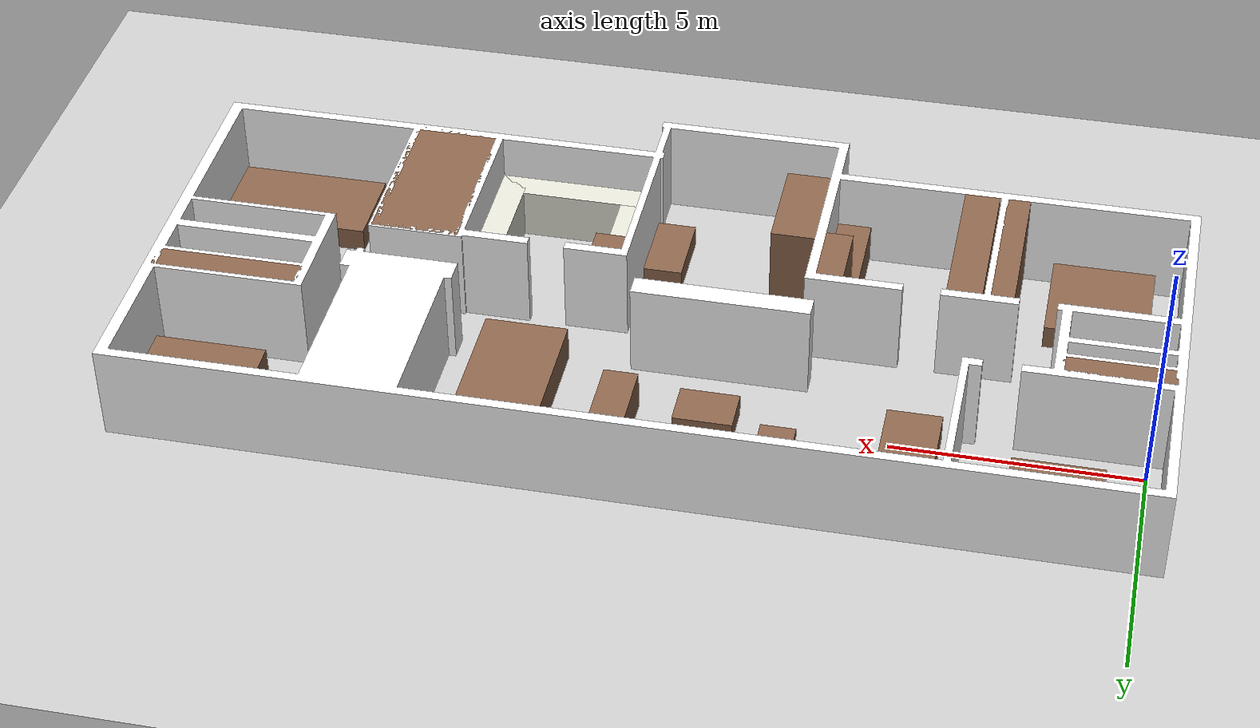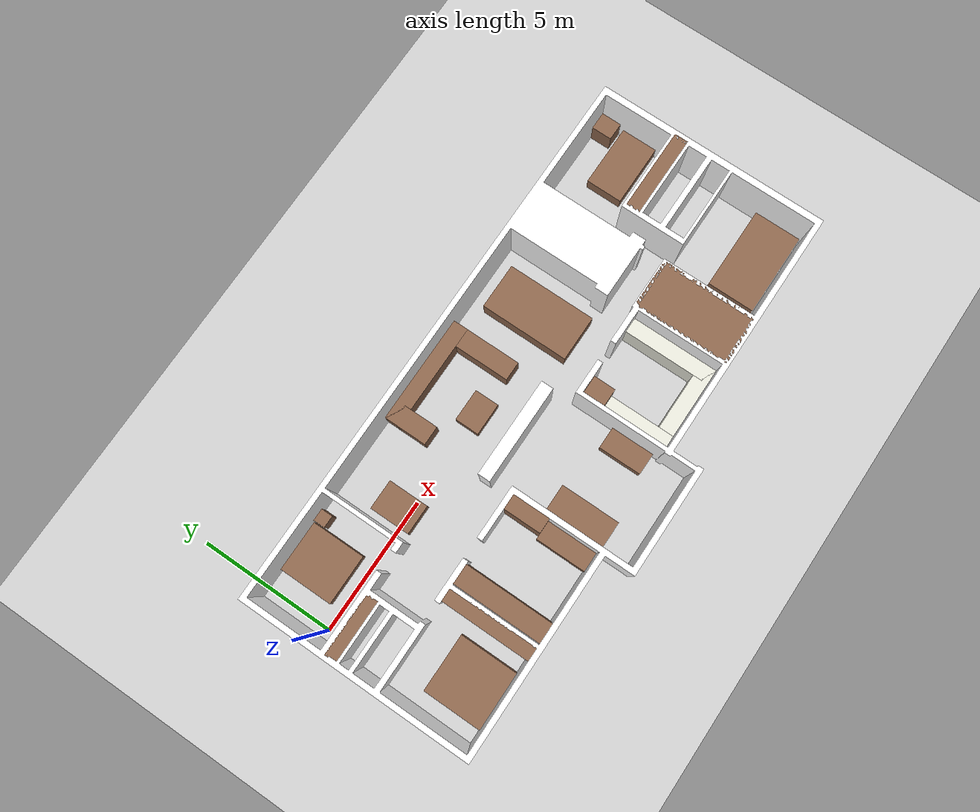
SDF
<sdf version="1.8">
  <world name="playground">

    <gravity>0 0 -9.8</gravity>
    <physics default="0" name="default_physics" type="ode">
      <max_step_size>0.01</max_step_size>
      <real_time_factor>1</real_time_factor>
      <real_time_update_rate>100</real_time_update_rate>
    </physics>

    <plugin
      filename="gz-sim-physics-system"
      name="gz::sim::systems::Physics">
    </plugin>
    <plugin
      filename="gz-sim-user-commands-system"
      name="gz::sim::systems::UserCommands">
    </plugin>
    <plugin
      filename="gz-sim-scene-broadcaster-system"
      name="gz::sim::systems::SceneBroadcaster">
    </plugin>

    <light name="sun" type="directional">
      <cast_shadows>true</cast_shadows>
      <pose>0 0 10 0 0 0</pose>
      <diffuse>0.8 0.8 0.8 1</diffuse>
      <specular>0.2 0.2 0.2 1</specular>
      <attenuation>
        <range>1000</range>
        <constant>0.9</constant>
        <linear>0.01</linear>
        <quadratic>0.001</quadratic>
      </attenuation>
      <direction>-0.5 0.1 -0.9</direction>
    </light>

    <model name="ground_plane">
      <static>true</static>
      <link name="link">
        <collision name="collision">
          <geometry>
            <plane>
              <normal>0 0 1</normal>
              <size>100 100</size>
            </plane>
          </geometry>
        </collision>
        <visual name="visual">
          <geometry>
            <plane>
              <normal>0 0 1</normal>
              <size>100 100</size>
            </plane>
          </geometry>
          <material>
            <ambient>0.8 0.8 0.8 1</ambient>
            <diffuse>0.8 0.8 0.8 1</diffuse>
            <specular>0.8 0.8 0.8 1</specular>
          </material>
        </visual>
      </link>
    </model>

<model name="home">
  <link name="link">
    <inertial>
      <mass>15</mass>
      <inertia>
        <ixx>0.0</ixx>
        <ixy>0.0</ixy>
        <ixz>0.0</ixz>
        <iyy>0.0</iyy>
        <iyz>0.0</iyz>
        <izz>0.0</izz>
      </inertia>
    </inertial>
    <collision name="collision">
      <pose>0 0 0 0 0 0</pose>
      <geometry>
        <mesh>
          <uri>model://home/meshes/home.stl</uri>
        </mesh>
      </geometry>
    </collision>
    <visual name="visual">
      <pose>0 0 0 0 0 0</pose>
      <geometry>
        <mesh>
          <uri>model://home/meshes/home.stl</uri>
        </mesh>
      </geometry>
      <material>
        <ambient>1 1 1 1</ambient>
        <diffuse>1 1 1 1</diffuse>
        <specular>0.5 0.5 0.5 1</specular>
        <emissive>0 0 0 1</emissive>
      </material>
    </visual>
  </link>
  <static>1</static>
</model>

    <!-- Zippy: furniture at real heights (from make_zippy_map.py) -->
    <!-- Zippy: furniture at real heights (from make_zippy_map.py) -->
    <model name="zippy_bed_a">
      <static>true</static>
      <pose>1.300 -4.725 0.2500 0 0 0</pose>
      <link name="link">
        <collision name="collision"><geometry><box><size>2.100 2.150 0.500</size></box></geometry></collision>
        <visual name="visual"><geometry><box><size>2.100 2.150 0.500</size></box></geometry>
          <material><ambient>0.55 0.4 0.3 1</ambient><diffuse>0.55 0.4 0.3 1</diffuse></material></visual>
      </link>
    </model>
    <model name="zippy_cupboard_a">
      <static>true</static>
      <pose>3.185 -4.200 1.0000 0 0 0</pose>
      <link name="link">
        <collision name="collision"><geometry><box><size>0.470 3.200 2.000</size></box></geometry></collision>
        <visual name="visual"><geometry><box><size>0.470 3.200 2.000</size></box></geometry>
          <material><ambient>0.55 0.4 0.3 1</ambient><diffuse>0.55 0.4 0.3 1</diffuse></material></visual>
      </link>
    </model>
    <model name="zippy_cupboard_g">
      <static>true</static>
      <pose>3.940 -4.200 1.0000 0 0 0</pose>
      <link name="link">
        <collision name="collision"><geometry><box><size>0.720 3.200 2.000</size></box></geometry></collision>
        <visual name="visual"><geometry><box><size>0.720 3.200 2.000</size></box></geometry>
          <material><ambient>0.55 0.4 0.3 1</ambient><diffuse>0.55 0.4 0.3 1</diffuse></material></visual>
      </link>
    </model>
    <model name="zippy_sofa_g">
      <static>true</static>
      <pose>6.550 -4.875 0.4250 0 0 0</pose>
      <link name="link">
        <collision name="collision"><geometry><box><size>0.700 1.850 0.850</size></box></geometry></collision>
        <visual name="visual"><geometry><box><size>0.700 1.850 0.850</size></box></geometry>
          <material><ambient>0.55 0.4 0.3 1</ambient><diffuse>0.55 0.4 0.3 1</diffuse></material></visual>
      </link>
    </model>
    <model name="zippy_cb">
      <static>true</static>
      <pose>6.625 -3.275 1.0000 0 0 0</pose>
      <link name="link">
        <collision name="collision"><geometry><box><size>0.550 1.350 2.000</size></box></geometry></collision>
        <visual name="visual"><geometry><box><size>0.550 1.350 2.000</size></box></geometry>
          <material><ambient>0.55 0.4 0.3 1</ambient><diffuse>0.55 0.4 0.3 1</diffuse></material></visual>
      </link>
    </model>
    <model name="zippy_cupboard_t">
      <static>true</static>
      <pose>0.750 -0.790 1.0000 0 0 0</pose>
      <link name="link">
        <collision name="collision"><geometry><box><size>2.200 0.420 2.000</size></box></geometry></collision>
        <visual name="visual"><geometry><box><size>2.200 0.420 2.000</size></box></geometry>
          <material><ambient>0.55 0.4 0.3 1</ambient><diffuse>0.55 0.4 0.3 1</diffuse></material></visual>
      </link>
    </model>
    <model name="zippy_bed_b">
      <static>true</static>
      <pose>1.675 1.387 0.2500 0 0 0</pose>
      <link name="link">
        <collision name="collision"><geometry><box><size>1.830 1.975 0.500</size></box></geometry></collision>
        <visual name="visual"><geometry><box><size>1.830 1.975 0.500</size></box></geometry>
          <material><ambient>0.55 0.4 0.3 1</ambient><diffuse>0.55 0.4 0.3 1</diffuse></material></visual>
      </link>
    </model>
    <model name="zippy_table_b">
      <static>true</static>
      <pose>2.875 2.162 0.3750 0 0 0</pose>
      <link name="link">
        <collision name="collision"><geometry><box><size>0.450 0.425 0.750</size></box></geometry></collision>
        <visual name="visual"><geometry><box><size>0.450 0.425 0.750</size></box></geometry>
          <material><ambient>0.55 0.4 0.3 1</ambient><diffuse>0.55 0.4 0.3 1</diffuse></material></visual>
      </link>
    </model>
    <model name="zippy_swing">
      <static>true</static>
      <pose>4.550 0.350 0.3000 0 0 0</pose>
      <link name="link">
        <collision name="collision"><geometry><box><size>1.100 1.500 0.600</size></box></geometry></collision>
        <visual name="visual"><geometry><box><size>1.100 1.500 0.600</size></box></geometry>
          <material><ambient>0.55 0.4 0.3 1</ambient><diffuse>0.55 0.4 0.3 1</diffuse></material></visual>
      </link>
    </model>
    <model name="zippy_sofa_back">
      <static>true</static>
      <pose>8.700 2.125 0.4250 0 0 0</pose>
      <link name="link">
        <collision name="collision"><geometry><box><size>4.000 0.550 0.850</size></box></geometry></collision>
        <visual name="visual"><geometry><box><size>4.000 0.550 0.850</size></box></geometry>
          <material><ambient>0.55 0.4 0.3 1</ambient><diffuse>0.55 0.4 0.3 1</diffuse></material></visual>
      </link>
    </model>
    <model name="zippy_sofa_arm_l">
      <static>true</static>
      <pose>7.050 1.600 0.4250 0 0 0</pose>
      <link name="link">
        <collision name="collision"><geometry><box><size>0.700 1.600 0.850</size></box></geometry></collision>
        <visual name="visual"><geometry><box><size>0.700 1.600 0.850</size></box></geometry>
          <material><ambient>0.55 0.4 0.3 1</ambient><diffuse>0.55 0.4 0.3 1</diffuse></material></visual>
      </link>
    </model>
    <model name="zippy_sofa_arm_r">
      <static>true</static>
      <pose>10.350 1.100 0.4250 0 0 0</pose>
      <link name="link">
        <collision name="collision"><geometry><box><size>0.700 2.600 0.850</size></box></geometry></collision>
        <visual name="visual"><geometry><box><size>0.700 2.600 0.850</size></box></geometry>
          <material><ambient>0.55 0.4 0.3 1</ambient><diffuse>0.55 0.4 0.3 1</diffuse></material></visual>
      </link>
    </model>
    <model name="zippy_coffee_table">
      <static>true</static>
      <pose>8.600 0.050 0.2250 0 0 0</pose>
      <link name="link">
        <collision name="collision"><geometry><box><size>1.200 0.900 0.450</size></box></geometry></collision>
        <visual name="visual"><geometry><box><size>1.200 0.900 0.450</size></box></geometry>
          <material><ambient>0.55 0.4 0.3 1</ambient><diffuse>0.55 0.4 0.3 1</diffuse></material></visual>
      </link>
    </model>
    <model name="zippy_entrance_cupboard">
      <static>true</static>
      <pose>7.550 -4.750 1.0000 0 0 0</pose>
      <link name="link">
        <collision name="collision"><geometry><box><size>0.900 2.100 2.000</size></box></geometry></collision>
        <visual name="visual"><geometry><box><size>0.900 2.100 2.000</size></box></geometry>
          <material><ambient>0.55 0.4 0.3 1</ambient><diffuse>0.55 0.4 0.3 1</diffuse></material></visual>
      </link>
    </model>
    <model name="zippy_bench">
      <static>true</static>
      <pose>10.300 -4.800 0.2250 0 0 0</pose>
      <link name="link">
        <collision name="collision"><geometry><box><size>0.800 1.600 0.450</size></box></geometry></collision>
        <visual name="visual"><geometry><box><size>0.800 1.600 0.450</size></box></geometry>
          <material><ambient>0.55 0.4 0.3 1</ambient><diffuse>0.55 0.4 0.3 1</diffuse></material></visual>
      </link>
    </model>
    <model name="zippy_counter">
      <static>true</static>
      <pose>11.150 -4.625 0.5350 0 0 0</pose>
      <link name="link">
        <collision name="collision"><geometry><box><size>0.600 2.450 1.070</size></box></geometry></collision>
        <visual name="visual"><geometry><box><size>0.600 2.450 1.070</size></box></geometry>
          <material><ambient>0.9 0.9 0.85 1</ambient><diffuse>0.9 0.9 0.85 1</diffuse></material></visual>
      </link>
    </model>
    <model name="zippy_fridge">
      <static>true</static>
      <pose>11.200 -2.975 0.8500 0 0 0</pose>
      <link name="link">
        <collision name="collision"><geometry><box><size>0.700 0.850 1.700</size></box></geometry></collision>
        <visual name="visual"><geometry><box><size>0.700 0.850 1.700</size></box></geometry>
          <material><ambient>0.55 0.4 0.3 1</ambient><diffuse>0.55 0.4 0.3 1</diffuse></material></visual>
      </link>
    </model>
    <model name="zippy_counter_2">
      <static>true</static>
      <pose>12.500 -5.550 0.5350 0 0 0</pose>
      <link name="link">
        <collision name="collision"><geometry><box><size>3.300 0.600 1.070</size></box></geometry></collision>
        <visual name="visual"><geometry><box><size>3.300 0.600 1.070</size></box></geometry>
          <material><ambient>0.9 0.9 0.85 1</ambient><diffuse>0.9 0.9 0.85 1</diffuse></material></visual>
      </link>
    </model>
    <model name="zippy_counter_3">
      <static>true</static>
      <pose>13.850 -4.200 0.5350 0 0 0</pose>
      <link name="link">
        <collision name="collision"><geometry><box><size>0.600 3.300 1.070</size></box></geometry></collision>
        <visual name="visual"><geometry><box><size>0.600 3.300 1.070</size></box></geometry>
          <material><ambient>0.9 0.9 0.85 1</ambient><diffuse>0.9 0.9 0.85 1</diffuse></material></visual>
      </link>
    </model>
    <model name="zippy_mandir">
      <static>true</static>
      <pose>15.100 -4.150 1.0000 0 0 0</pose>
      <link name="link">
        <collision name="collision"><geometry><box><size>1.800 3.500 2.000</size></box></geometry></collision>
        <visual name="visual"><geometry><box><size>1.800 3.500 2.000</size></box></geometry>
          <material><ambient>0.55 0.4 0.3 1</ambient><diffuse>0.55 0.4 0.3 1</diffuse></material></visual>
      </link>
    </model>
    <model name="zippy_dining_table">
      <static>true</static>
      <pose>12.550 0.250 0.3750 0 0 0</pose>
      <link name="link">
        <collision name="collision"><geometry><box><size>1.700 3.300 0.750</size></box></geometry></collision>
        <visual name="visual"><geometry><box><size>1.700 3.300 0.750</size></box></geometry>
          <material><ambient>0.55 0.4 0.3 1</ambient><diffuse>0.55 0.4 0.3 1</diffuse></material></visual>
      </link>
    </model>
    <model name="zippy_bed_c">
      <static>true</static>
      <pose>18.300 -4.875 0.2500 0 0 0</pose>
      <link name="link">
        <collision name="collision"><geometry><box><size>3.100 1.750 0.500</size></box></geometry></collision>
        <visual name="visual"><geometry><box><size>3.100 1.750 0.500</size></box></geometry>
          <material><ambient>0.55 0.4 0.3 1</ambient><diffuse>0.55 0.4 0.3 1</diffuse></material></visual>
      </link>
    </model>
    <model name="zippy_cupboard_t_2">
      <static>true</static>
      <pose>18.450 -0.550 1.0000 0 0 0</pose>
      <link name="link">
        <collision name="collision"><geometry><box><size>3.000 0.500 2.000</size></box></geometry></collision>
        <visual name="visual"><geometry><box><size>3.000 0.500 2.000</size></box></geometry>
          <material><ambient>0.55 0.4 0.3 1</ambient><diffuse>0.55 0.4 0.3 1</diffuse></material></visual>
      </link>
    </model>
    <model name="zippy_bed_d">
      <static>true</static>
      <pose>18.700 0.825 0.2500 0 0 0</pose>
      <link name="link">
        <collision name="collision"><geometry><box><size>2.300 1.350 0.500</size></box></geometry></collision>
        <visual name="visual"><geometry><box><size>2.300 1.350 0.500</size></box></geometry>
          <material><ambient>0.55 0.4 0.3 1</ambient><diffuse>0.55 0.4 0.3 1</diffuse></material></visual>
      </link>
    </model>
    <model name="zippy_table_d">
      <static>true</static>
      <pose>19.525 2.025 0.3750 0 0 0</pose>
      <link name="link">
        <collision name="collision"><geometry><box><size>0.650 0.750 0.750</size></box></geometry></collision>
        <visual name="visual"><geometry><box><size>0.650 0.750 0.750</size></box></geometry>
          <material><ambient>0.55 0.4 0.3 1</ambient><diffuse>0.55 0.4 0.3 1</diffuse></material></visual>
      </link>
    </model>
  </world>
</sdf>
